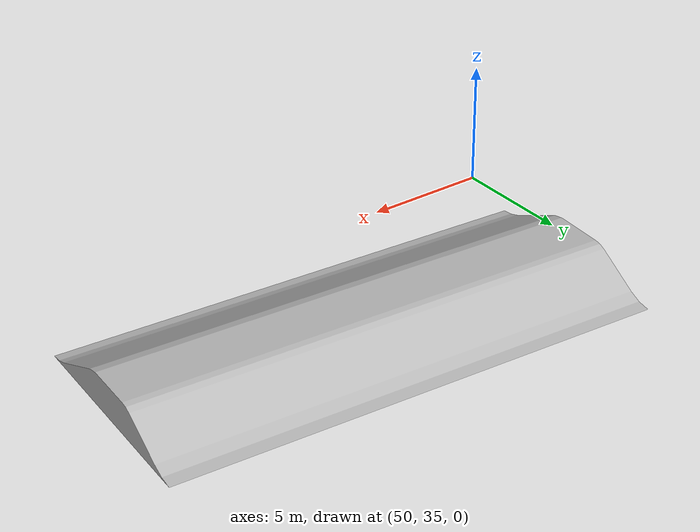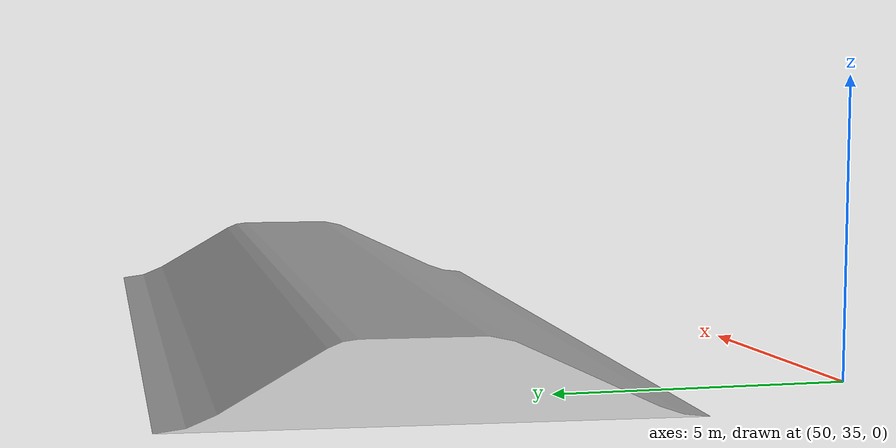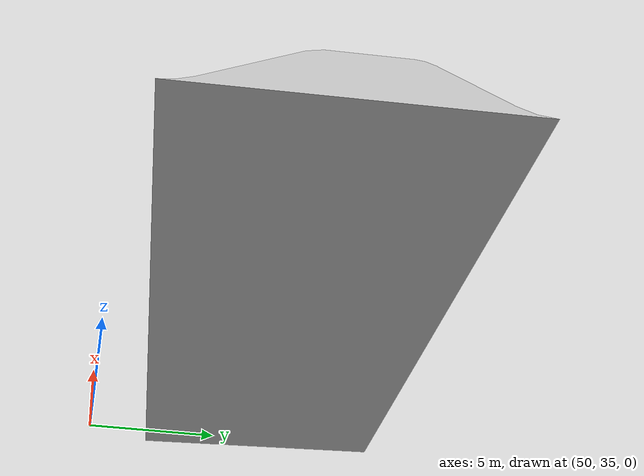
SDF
<?xml version="1.0" ?>
<sdf version="1.5">
  <model name="roughterrain_1000x1000">
    <static>true</static>
    <link name="link">
      <pose frame="">60 35 -0.5 -1.5708 0 1.5</pose>
      <collision name="collision">
        <geometry>
          <mesh>
            <uri>model://slope/meshes/slope.STL</uri>
            <scale>0.2 0.2 0.2</scale>
          </mesh>
        </geometry>
        <surface>
          <friction>
            <ode>
              <mu>300</mu>
              <mu2>150</mu2>
            </ode>
          </friction>
      </surface>
      </collision>
      <visual name="visual">
          <geometry>
             <mesh>
                <uri>model://slope/meshes/slope.STL</uri>
                <scale>0.2 0.2 0.2</scale>
             </mesh>
          </geometry>
      </visual>
    </link>

  </model>
</sdf>
